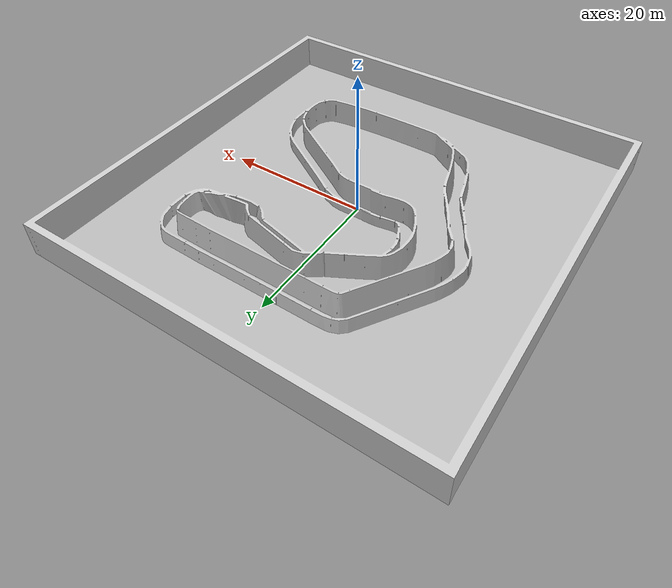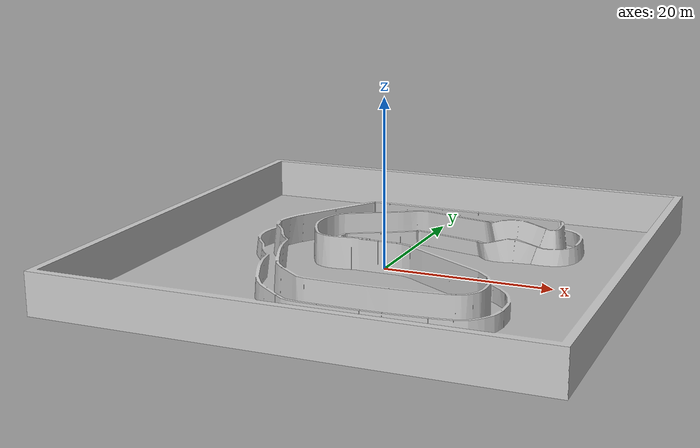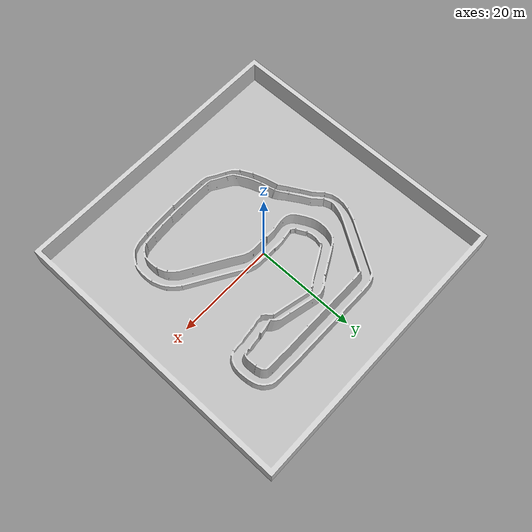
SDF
<sdf version="1.6">
 <world name="default">
  <light name="sun" type="directional">
   <cast_shadows>0</cast_shadows>
   <grid>0</grid>
   <pose>0 0 10 0 -0 0</pose>
   <diffuse>0.8 0.8 0.8 1</diffuse>
   <specular>0.2 0.2 0.2 1</specular>
   <attenuation>
    <range>1000</range>
    <constant>0.9</constant>
    <linear>0.01</linear>
    <quadratic>0.001</quadratic>
   </attenuation>
   <direction>-0.5 0.1 -0.9</direction>
  </light>
  <gravity>0 0 -9.8</gravity>
  <magnetic_field>6e-06 2.3e-05 -4.2e-05</magnetic_field>
  <atmosphere type="adiabatic"/>
  <physics name="default_physics" default="0" type="ode">
   <max_step_size>0.001</max_step_size>
   <real_time_factor>1</real_time_factor>
   <real_time_update_rate>1000</real_time_update_rate>
  </physics>
  <scene>
   <ambient>0.97 0.97 0.97 1</ambient>
   <background>0.6 0.6 0.6 0</background>
   <shadows>0</shadows>
   <grid>0</grid>
   <sky><time>17</time><clouds><speed>12</speed></clouds></sky>
  </scene>
  <audio><device>default</device></audio>
  <spherical_coordinates>
   <surface_model>EARTH_WGS84</surface_model>
   <latitude_deg>0</latitude_deg>
   <longitude_deg>0</longitude_deg>
   <elevation>0</elevation>
   <heading_deg>0</heading_deg>
  </spherical_coordinates>
  <model name="Scene">
   <link name="link_0">
    <inertial>
     <mass>1</mass>
     <inertia>
      <ixx>0.166667</ixx>
      <ixy>0</ixy>
      <ixz>0</ixz>
      <iyy>0.166667</iyy>
      <iyz>0</iyz>
      <izz>0.166667</izz>
     </inertia>
    </inertial>
    <visual name="visual">
     <geometry>
      <mesh>
       <uri>/home/u4/buffer/roscourse_2023_project_scene/models/project_2023.dae</uri>
       <scale>1 1 1</scale>
      </mesh>
     </geometry>
     <material><lighting>1</lighting></material>
     <cast_shadows>0</cast_shadows>
    </visual>
    <collision name="collision">
     <geometry>
      <mesh>
       <uri>/home/u4/buffer/roscourse_2023_project_scene/models/project_2023.dae</uri>
       <scale>1 1 1</scale>
      </mesh>
     </geometry>
     <surface>
      <friction>
       <ode><mu>1</mu><mu2>1</mu2><fdir1>0 0 0</fdir1><slip1>0</slip1><slip2>0</slip2></ode>
       <torsional>
        <coefficient>1</coefficient>
        <patch_radius>0</patch_radius>
        <surface_radius>0</surface_radius>
        <use_patch_radius>1</use_patch_radius>
        <ode><slip>0</slip></ode>
       </torsional>
      </friction>
      <bounce><restitution_coefficient>0</restitution_coefficient><threshold>1e+06</threshold></bounce>
      <contact>
       <collide_without_contact>0</collide_without_contact>
       <collide_without_contact_bitmask>1</collide_without_contact_bitmask>
       <collide_bitmask>1</collide_bitmask>
       <ode>
        <soft_cfm>0</soft_cfm>
        <soft_erp>0.2</soft_erp>
        <kp>1e+13</kp>
        <kd>1</kd>
        <max_vel>0.01</max_vel>
        <min_depth>0</min_depth>
       </ode>
       <bullet>
        <split_impulse>1</split_impulse>
        <split_impulse_penetration_threshold>-0.01</split_impulse_penetration_threshold>
        <soft_cfm>0</soft_cfm>
        <soft_erp>0.2</soft_erp>
        <kp>1e+13</kp>
        <kd>1</kd>
       </bullet>
      </contact>
     </surface>
    </collision>
   </link>
   <static>1</static>
   <pose>0.404556 -0.01074 -0.163868 0 -0 0</pose>
  </model>
 </world>
</sdf>
